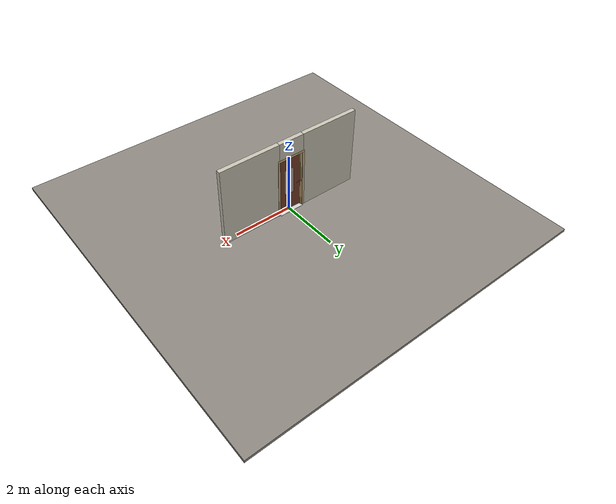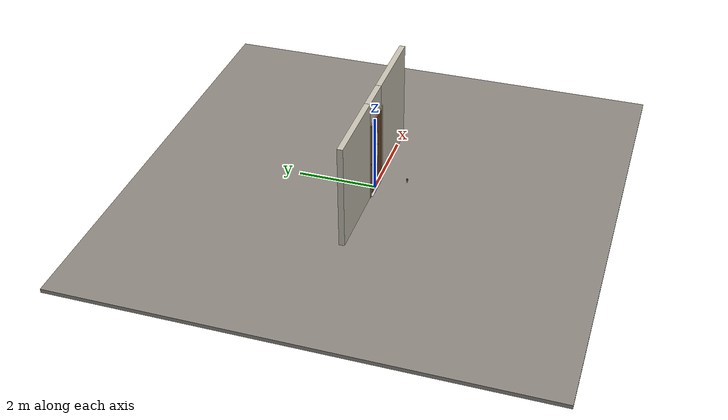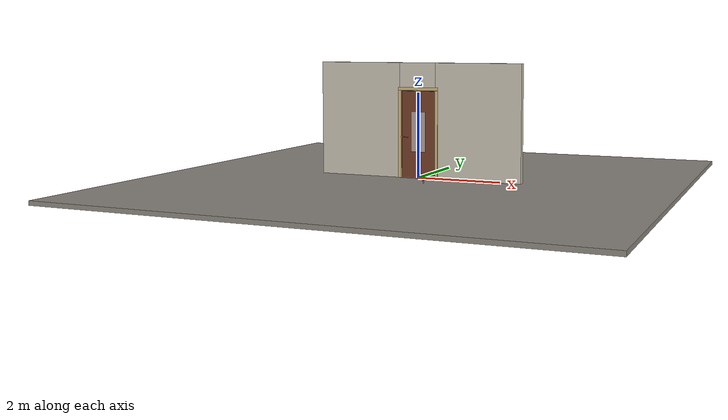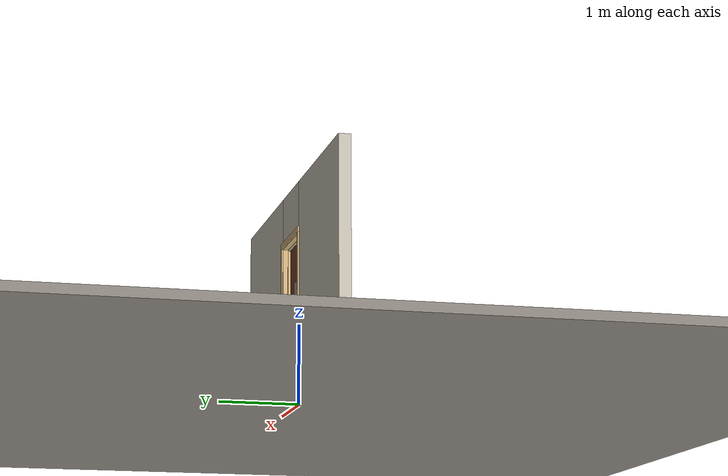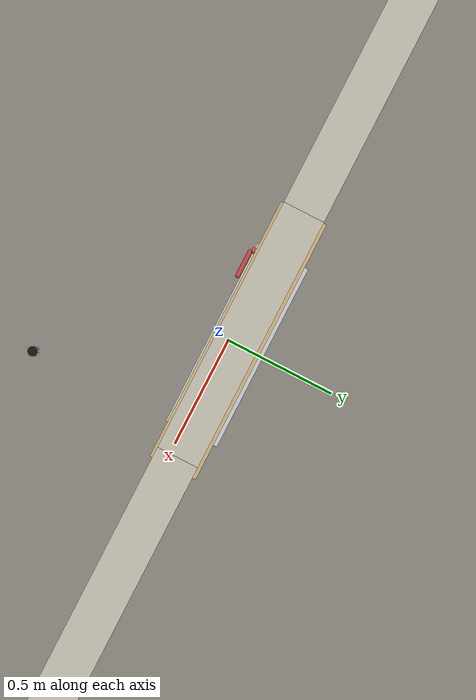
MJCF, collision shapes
<?xml version="1.0" ?>
<mujoco model="db0654_swing_single_full">
  <compiler angle="radian" meshdir="../../hardware" texturedir="../../textures" autolimits="true" inertiafromgeom="false"/>
  <option timestep="0.002" integrator="implicitfast" cone="elliptic" impratio="10" noslip_iterations="3">
    <flag multiccd="enable"/>
  </option>
  <size memory="16M"/>
  <default>
    <geom condim="4" solref="0.005 1" solimp="0.95 0.99 0.001"/>
    <joint solreflimit="0.005 1" solimplimit="0.95 0.99 0.001"/>
    <tendon solreflimit="0.005 1"/>
    <equality solref="0.002 1"/>
  </default>
  <visual>
    <headlight ambient="0.4 0.4 0.4" diffuse="0.7 0.7 0.7" specular="0.2 0.2 0.2"/>
    <quality shadowsize="4096"/>
    <map znear="0.01" zfar="60"/>
  </visual>
  <asset>
    <mesh name="hinge_e22b26c0c1" file="hinge_e22b26c0c1.obj"/>
    <mesh name="hinge_jamb_e1d088f8dc" file="hinge_jamb_e1d088f8dc.obj"/>
    <mesh name="knocker_a8f2ce0ad7" file="knocker_a8f2ce0ad7.obj"/>
    <mesh name="lever_9f02b544cf" file="lever_9f02b544cf.obj"/>
    <material name="mat_floor" rgba="0.55 0.53 0.5 1" specular="0.2" shininess="0.15" reflectance="0"/>
    <material name="mat_wall" rgba="0.78 0.76 0.7 1" specular="0.2" shininess="0.1" reflectance="0"/>
    <material name="mat_leaf" rgba="0.45 0.24 0.15 1" specular="0.2" shininess="0.55" reflectance="0"/>
    <material name="mat_glass" rgba="0.9 0.93 0.95 0.6" specular="0.2" shininess="0.5" reflectance="0.1"/>
    <material name="mat_hinge" rgba="0.65 0.66 0.68 1" specular="0.74" shininess="0.5" reflectance="0.36"/>
    <material name="mat_op_nickel_satin" rgba="0.72 0.7 0.66 1" specular="0.8" shininess="0.65" reflectance="0.4"/>
    <material name="mat_trim" rgba="0.85 0.66 0.3 1" specular="0.8" shininess="0.75" reflectance="0.4"/>
    <material name="mat_bolt" rgba="0.75 0.76 0.77 1" specular="0.8" shininess="0.65" reflectance="0.4"/>
    <material name="mat_frame" rgba="0.82 0.7 0.5 1" specular="0.2" shininess="0.45" reflectance="0"/>
    <material name="mat_seal" rgba="0.1 0.1 0.1 1" specular="0.2" shininess="0.1" reflectance="0"/>
    <material name="mat_threshold" rgba="0.8 0.81 0.83 1" specular="0.8" shininess="0.6" reflectance="0.4"/>
    <material name="mat_knocker" rgba="0.55 0.42 0.22 1" specular="0.74" shininess="0.45" reflectance="0.36"/>
    <material name="mat_bumper_stop" rgba="0.08 0.08 0.08 1" specular="0.2" shininess="0.1" reflectance="0"/>
    <material name="mat_stop_base" rgba="0.9 0.9 0.92 1" specular="0.8" shininess="0.9" reflectance="0.4"/>
    <texture name="skybox" type="skybox" builtin="gradient" rgb1="0.6 0.7 0.85" rgb2="0.9 0.92 0.95" width="256" height="256"/>
  </asset>
  <worldbody>
    <light name="sun" pos="1.5 -2.5 4" dir="-0.3 0.5 -0.8" directional="true" diffuse="0.8 0.8 0.8" specular="0.3 0.3 0.3" castshadow="true"/>
    <light name="fill" pos="-1.5 2.5 3" dir="0.3 -0.5 -0.7" directional="true" diffuse="0.35 0.35 0.4" castshadow="false"/>
    <camera name="robot_view" pos="0 -2.498687 1.734312" xyaxes="1 0 0 0 0.26963 0.962964" fovy="52"/>
    <camera name="far_view" pos="0 2.585687 1.734312" xyaxes="-1 0 0 0 -0.26963 0.962964" fovy="52"/>
    <camera name="iso" pos="-1.932062 -2.091938 2.141063" xyaxes="0.741536 -0.670913 0 0.242917 0.268487 0.932151" fovy="46"/>
    <camera name="detail_handle" pos="-0.0705 -0.877 1.245" xyaxes="0.97561 0.219512 0 -0.070934 0.315262 0.94635" fovy="38"/>
    <geom name="floor" type="box" size="6 6 0.05" pos="0 0 -0.05" material="mat_floor" group="0" contype="1" conaffinity="1" friction="0.8 0.005 0.0001" density="2400"/>
    <geom name="wall_left" type="box" size="1.02025 0.0725 1.35" pos="-1.47975 0.0435 1.35" material="mat_wall" group="0" contype="1" conaffinity="1" friction="0.6 0.005 0.0001" density="800"/>
    <geom name="wall_right" type="box" size="1.03525 0.0725 1.35" pos="1.46475 0.0435 1.35" material="mat_wall" group="0" contype="1" conaffinity="1" friction="0.6 0.005 0.0001" density="800"/>
    <geom name="wall_header" type="box" size="0.4445 0.0725 0.303" pos="-0.015 0.0435 2.397" material="mat_wall" group="0" contype="1" conaffinity="1" friction="0.6 0.005 0.0001" density="800"/>
    <geom name="hinge_0_jamb" type="mesh" mesh="hinge_jamb_e1d088f8dc" pos="0.4075 -0.029 0.259" quat="0 0 1 0" material="mat_hinge" group="1" contype="0" conaffinity="0" density="7850"/>
    <geom name="hinge_1_jamb" type="mesh" mesh="hinge_jamb_e1d088f8dc" pos="0.4075 -0.029 1.025" quat="0 0 1 0" material="mat_hinge" group="1" contype="0" conaffinity="0" density="7850"/>
    <geom name="hinge_2_jamb" type="mesh" mesh="hinge_jamb_e1d088f8dc" pos="0.4075 -0.029 1.861" quat="0 0 1 0" material="mat_hinge" group="1" contype="0" conaffinity="0" density="7850"/>
    <geom name="jamb_hinge" type="box" size="0.0095 0.0725 1.0225" pos="0.42 0.0435 1.0225" material="mat_frame" group="0" contype="1" conaffinity="1" friction="0.6 0.005 0.0001" density="400"/>
    <geom name="strike_965_wall_n" type="box" size="0.0245 0.05475 0.015" pos="-0.435 0.06125 0.965" material="mat_frame" group="0" contype="1" conaffinity="1" friction="0.6 0.005 0.0001" density="400"/>
    <geom name="strike_965_wall_p" type="box" size="0.0245 0.008 0.015" pos="-0.435 -0.0145 0.965" material="mat_frame" group="0" contype="1" conaffinity="1" friction="0.6 0.005 0.0001" density="400"/>
    <geom name="strike_965_ramp" type="box" size="0.0245 0.016771 0.015" pos="-0.439913 -0.026543 0.965" quat="0.973249 0 0 -0.229753" material="mat_frame" group="0" contype="1" conaffinity="1" friction="0.12 0.005 0.0001" density="400"/>
    <geom name="strike_965_back" type="box" size="0.0155 0.0065 0.015" pos="-0.444 0 0.965" material="mat_frame" group="0" contype="1" conaffinity="1" friction="0.6 0.005 0.0001" density="400"/>
    <geom name="jamb_strike_0" type="box" size="0.0245 0.0725 0.475" pos="-0.435 0.0435 0.475" material="mat_frame" group="0" contype="1" conaffinity="1" friction="0.6 0.005 0.0001" density="400"/>
    <geom name="jamb_strike_1" type="box" size="0.0245 0.0725 0.5325" pos="-0.435 0.0435 1.5125" material="mat_frame" group="0" contype="1" conaffinity="1" friction="0.6 0.005 0.0001" density="400"/>
    <geom name="jamb_head" type="box" size="0.4445 0.0725 0.0095" pos="-0.015 0.0435 2.0545" material="mat_frame" group="0" contype="1" conaffinity="1" friction="0.6 0.005 0.0001" density="400"/>
    <geom name="head_stud" type="box" size="0.4445 0.0725 0.015" pos="-0.015 0.0435 2.079" material="mat_wall" group="0" contype="1" conaffinity="1" friction="0.6 0.005 0.0001" density="500"/>
    <geom name="stop_hinge" type="box" size="0.0055 0.016 1.0225" pos="0.405 0.0385 1.0225" material="mat_frame" group="0" contype="1" conaffinity="1" friction="0.6 0.005 0.0001" density="400"/>
    <geom name="stop_strike" type="box" size="0.0055 0.016 1.0225" pos="-0.405 0.0385 1.0225" material="mat_frame" group="0" contype="1" conaffinity="1" friction="0.6 0.005 0.0001" density="400"/>
    <geom name="stop_head" type="box" size="0.4105 0.016 0.0055" pos="0 0.0385 2.0395" material="mat_frame" group="0" contype="1" conaffinity="1" friction="0.6 0.005 0.0001" density="400"/>
    <geom name="seal_hinge" type="box" size="0.004 0.004 1.0225" pos="0.4075 0.026 1.0225" material="mat_seal" group="1" contype="0" conaffinity="0" density="1100"/>
    <geom name="seal_strike" type="box" size="0.004 0.004 1.0225" pos="-0.4075 0.026 1.0225" material="mat_seal" group="1" contype="0" conaffinity="0" density="1100"/>
    <geom name="seal_head" type="box" size="0.3905 0.004 0.008" pos="0 0.026 2.033" material="mat_seal" group="1" contype="0" conaffinity="0" density="1100"/>
    <geom name="casing_l_n" type="box" size="0.035 0.008 1.032" pos="-0.4595 -0.037 1.0225" material="mat_frame" group="2" contype="0" conaffinity="0" density="400"/>
    <geom name="casing_r_n" type="box" size="0.035 0.008 1.032" pos="0.4595 -0.037 1.0225" material="mat_frame" group="2" contype="0" conaffinity="0" density="400"/>
    <geom name="casing_h_n" type="box" size="0.4945 0.008 0.035" pos="0 -0.037 2.094" material="mat_frame" group="2" contype="0" conaffinity="0" density="400"/>
    <geom name="casing_l_p" type="box" size="0.035 0.008 1.032" pos="-0.4595 0.124 1.0225" material="mat_frame" group="2" contype="0" conaffinity="0" density="400"/>
    <geom name="casing_r_p" type="box" size="0.035 0.008 1.032" pos="0.4595 0.124 1.0225" material="mat_frame" group="2" contype="0" conaffinity="0" density="400"/>
    <geom name="casing_h_p" type="box" size="0.4945 0.008 0.035" pos="0 0.124 2.094" material="mat_frame" group="2" contype="0" conaffinity="0" density="400"/>
    <geom name="threshold" type="box" size="0.4295 0.1225 0.004" pos="0 0.0435 0.004" material="mat_threshold" group="0" contype="1" conaffinity="1" friction="0.6 0.005 0.0001" density="2700"/>
    <geom name="door_stop_base" type="cylinder" size="0.022 0.003" pos="0.4235 -0.72005 0.003" material="mat_stop_base" group="0" contype="1" conaffinity="1" friction="0.6 0.005 0.0001" density="7850"/>
    <geom name="door_stop_post" type="cylinder" size="0.012 0.0245" pos="0.4235 -0.72005 0.0305" material="mat_stop_base" group="0" contype="1" conaffinity="1" friction="0.6 0.005 0.0001" density="7850"/>
    <geom name="door_stop_bumper" type="cylinder" size="0.022 0.02" pos="0.4235 -0.72005 0.075" material="mat_bumper_stop" group="0" contype="1" conaffinity="1" friction="0.6 0.005 0.0001" density="1100"/>
    <site name="approach_point" pos="0 -1.5 0" quat="1 0 0 0" size="0.05" rgba="0.2 0.9 0.2 0.5" group="4"/>
    <site name="goal_point" pos="0 1.5 0" quat="1 0 0 0" size="0.05" rgba="0.2 0.9 0.2 0.5" group="4"/>
    <site name="door_plane_center" pos="0 0 1.0225" quat="1 0 0 0" size="0.02" rgba="0.2 0.9 0.2 0.5" group="4"/>
    <body name="leaf" pos="0.4105 0 0">
      <inertial pos="-0.401262 -0.000368 1.025487" mass="40.763899" quat="0.500475 -0.499179 0.500808 0.499536" diaginertia="2.34281263 14.095726705 16.424763059"/>
      <joint name="leaf_hinge" type="hinge" axis="0 0 1" pos="-0.003 -0.029 0" limited="true" range="0 1.570796" solreflimit="0.02 1" damping="0.210326" frictionloss="1.688964" armature="0.02"/>
      <geom name="leaf_slab" type="box" size="0.4065 0.022 1.016" pos="-0.4095 0 1.025" material="mat_leaf" group="0" contype="1" conaffinity="1" friction="0.35 0.005 0.0001" density="1"/>
      <geom name="leaf_glass_0" type="box" size="0.174075 0.0228 0.469392" pos="-0.4095 0 1.087992" material="mat_glass" group="1" contype="0" conaffinity="0" density="1"/>
      <geom name="hinge_0" type="mesh" mesh="hinge_e22b26c0c1" pos="-0.003 -0.029 0.259" quat="0 0 1 0" material="mat_hinge" group="1" contype="0" conaffinity="0" density="7850"/>
      <geom name="hinge_1" type="mesh" mesh="hinge_e22b26c0c1" pos="-0.003 -0.029 1.025" quat="0 0 1 0" material="mat_hinge" group="1" contype="0" conaffinity="0" density="7850"/>
      <geom name="hinge_2" type="mesh" mesh="hinge_e22b26c0c1" pos="-0.003 -0.029 1.861" quat="0 0 1 0" material="mat_hinge" group="1" contype="0" conaffinity="0" density="7850"/>
      <geom name="leaf_latch_bolt_faceplate" type="box" size="0.0006 0.011 0.025" pos="-0.8154 0 0.965" material="mat_bolt" group="1" contype="0" conaffinity="0" density="8500"/>
      <site name="leaf_edge_mid" pos="-0.816 0 1.016" quat="1 0 0 0" size="0.02" rgba="0.2 0.9 0.2 0.5" group="4"/>
      <body name="leaf_handle" pos="-0.761 0 0.965">
        <inertial pos="0.028544 0 0" mass="0.978187" quat="0 0.707107 0.707107 0" diaginertia="0.001772047 0.003604455 0.005198299"/>
        <joint name="leaf_handle_hinge" type="hinge" axis="0 1 0" limited="true" range="0 0.96" damping="0.245624" frictionloss="0.048" stiffness="1.2" springref="-0.458333" armature="0.01"/>
        <geom name="leaf_handle_spindle" type="cylinder" size="0.006 0.03" pos="0 0 0" quat="0.707107 -0.707107 0 0" material="mat_op_nickel_satin" group="1" contype="0" conaffinity="0" density="7850"/>
        <geom name="leaf_handle_lever_n" type="mesh" mesh="lever_9f02b544cf" pos="0 -0.022 0" quat="0 0 -0.707107 0.707107" material="mat_op_nickel_satin" group="1" contype="0" conaffinity="0" density="3000"/>
        <geom name="leaf_handle_lever_col_n" type="capsule" size="0.0095 0.053" pos="0.0625 -0.077 0" quat="0.707107 0 0.707107 0" material="mat_op_nickel_satin" group="3" contype="1" conaffinity="1" rgba="0.8 0.3 0.3 0.25" friction="0.7 0.01 0.0001" density="3000"/>
        <geom name="leaf_handle_hub_col_n" type="cylinder" size="0.012 0.022" pos="0 -0.052 0" quat="0.707107 -0.707107 0 0" material="mat_op_nickel_satin" group="3" contype="1" conaffinity="1" rgba="0.8 0.3 0.3 0.25" friction="0.6 0.005 0.0001" density="3000"/>
        <geom name="leaf_handle_lever_p" type="mesh" mesh="lever_9f02b544cf" pos="0 0.022 0" quat="0 0 0.707107 0.707107" material="mat_op_nickel_satin" group="1" contype="0" conaffinity="0" density="3000"/>
        <geom name="leaf_handle_lever_col_p" type="capsule" size="0.0095 0.053" pos="0.0625 0.077 0" quat="0.707107 0 0.707107 0" material="mat_op_nickel_satin" group="3" contype="1" conaffinity="1" rgba="0.8 0.3 0.3 0.25" friction="0.7 0.01 0.0001" density="3000"/>
        <geom name="leaf_handle_hub_col_p" type="cylinder" size="0.012 0.022" pos="0 0.052 0" quat="0.707107 -0.707107 0 0" material="mat_op_nickel_satin" group="3" contype="1" conaffinity="1" rgba="0.8 0.3 0.3 0.25" friction="0.6 0.005 0.0001" density="3000"/>
        <site name="leaf_handle_grip_n" pos="0.1 -0.077 0" quat="1 0 0 0" size="0.012" rgba="0.2 0.9 0.2 0.5" group="4"/>
        <site name="leaf_handle_grip_p" pos="0.1 0.077 0" quat="1 0 0 0" size="0.012" rgba="0.2 0.9 0.2 0.5" group="4"/>
      </body>
      <body name="leaf_latch_bolt" pos="-0.816 0 0.965">
        <inertial pos="0.008 0 0" mass="0.027149" quat="0 0 -0.707107 0.707107" diaginertia="0.000000328 0.000003943 0.000003943"/>
        <joint name="leaf_latch_bolt_slide" type="slide" axis="1 0 0" limited="true" range="0 0.014" damping="2" frictionloss="0.3" stiffness="400" springref="-0.01" armature="0.1"/>
        <geom name="leaf_latch_bolt_capsule" type="capsule" size="0.005 0.017" pos="0.008 0 0" quat="0.707107 0 -0.707107 0" material="mat_bolt" group="0" contype="1" conaffinity="1" friction="0.2 0.005 0.0001" density="8500"/>
      </body>
      <body name="knocker" pos="-0.4095 -0.022 1.289">
        <inertial pos="0 -0.010216 0.001203" mass="0.814961" quat="0.49606 0.50391 0.50391 -0.49606" diaginertia="0.000611431 0.001116108 0.001534609"/>
        <joint name="knocker_hinge" type="hinge" axis="-1 0 0" pos="0 0 0.055" limited="true" range="0 0.6" damping="0.005" armature="0.002"/>
        <geom name="knocker_mesh" type="mesh" mesh="knocker_a8f2ce0ad7" pos="0 0 0" quat="0 0 -0.707107 0.707107" material="mat_knocker" group="2" contype="0" conaffinity="0" density="8500"/>
        <geom name="knocker_col" type="capsule" size="0.007 0.03" pos="0 -0.025 -0.01" quat="0.707107 0 0.707107 0" material="mat_knocker" group="3" contype="1" conaffinity="1" rgba="0.8 0.3 0.3 0.25" friction="0.6 0.005 0.0001" density="8500"/>
      </body>
    </body>
  </worldbody>
  <tendon>
    <fixed name="leaf_latch_bolt_coupling" limited="true" range="0 10">
      <joint joint="leaf_latch_bolt_slide" coef="1"/>
      <joint joint="leaf_handle_hinge" coef="-0.015385"/>
    </fixed>
  </tendon>
  <sensor>
    <jointpos name="leaf_hinge_pos" joint="leaf_hinge"/>
    <jointvel name="leaf_hinge_vel" joint="leaf_hinge"/>
    <jointpos name="leaf_handle_hinge_pos" joint="leaf_handle_hinge"/>
    <jointvel name="leaf_handle_hinge_vel" joint="leaf_handle_hinge"/>
    <jointpos name="leaf_latch_bolt_slide_pos" joint="leaf_latch_bolt_slide"/>
    <jointvel name="leaf_latch_bolt_slide_vel" joint="leaf_latch_bolt_slide"/>
  </sensor>
</mujoco>
